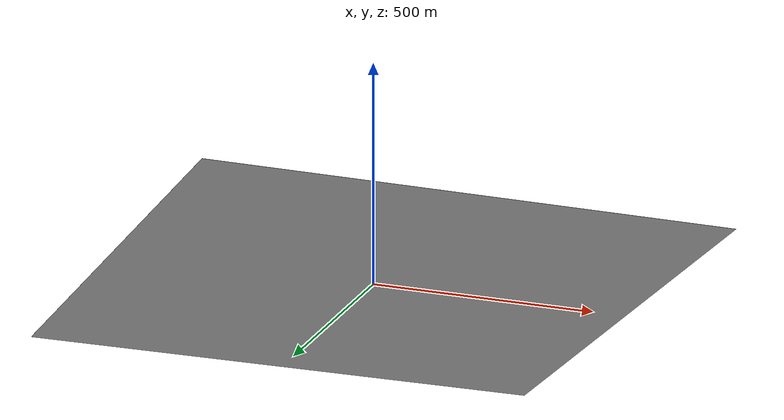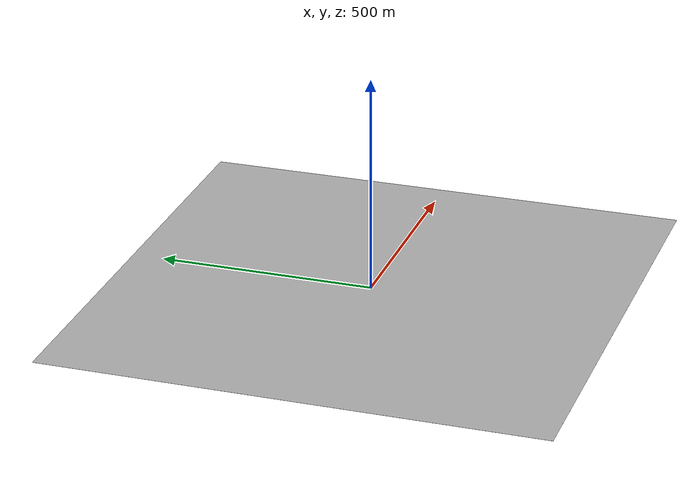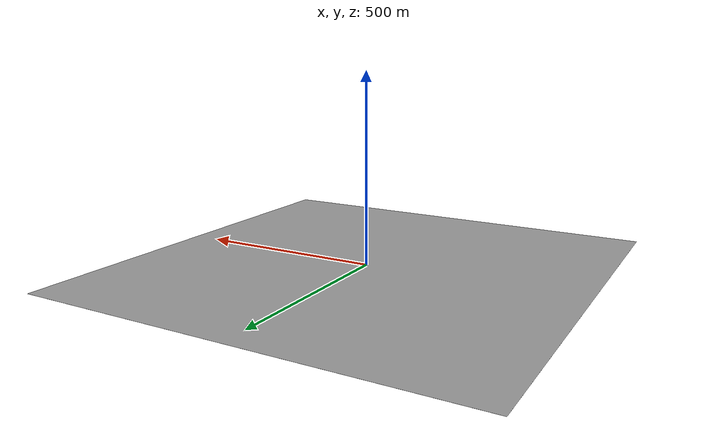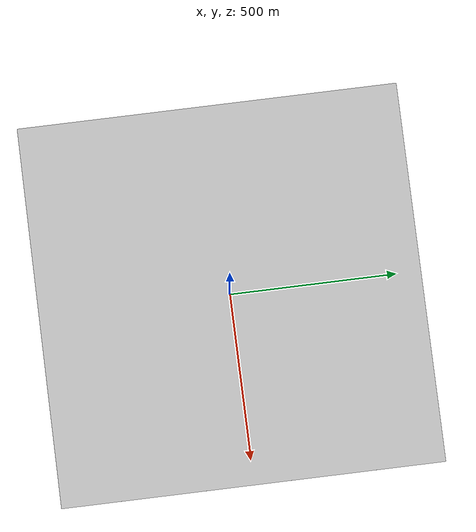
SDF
<?xml version="1.0" ?>
<sdf version="1.5">
  <model name="Wannsee_final_scenario">
    <static>true</static>
    <link name="floor">
      <collision name="collision">
        <geometry>
          <box>
            <size>1148.55 1148.55 .1</size>
          </box>
        </geometry>
      </collision>
      <visual name="visual">
        <cast_shadows>false</cast_shadows>
        <geometry>
          <box>
            <size>1148.55 1148.55 .1</size>
          </box>
        </geometry>
        <material>
          <script>
            <uri>model://Wannsee_final_scenario/materials/scripts</uri>
            <uri>model://Wannsee_final_scenario/materials/textures</uri>
            <name>Wannsee_final_scenario</name>
          </script>
        </material>
      </visual>
    </link>
  </model>
</sdf>
